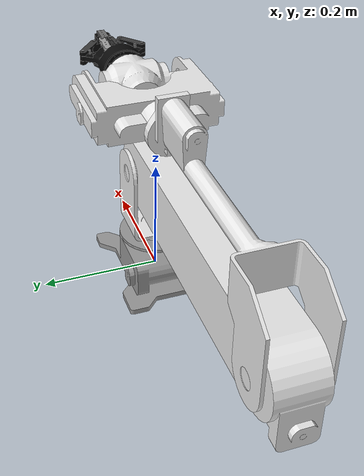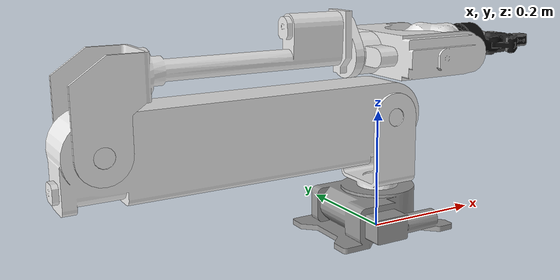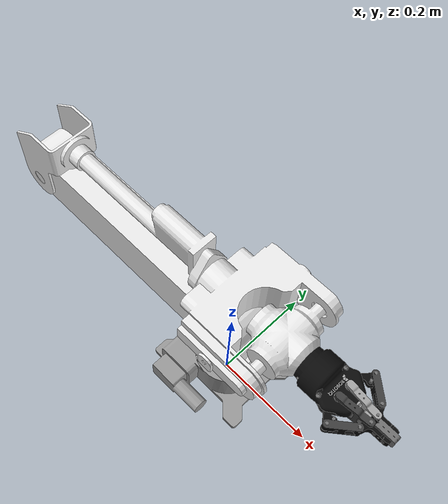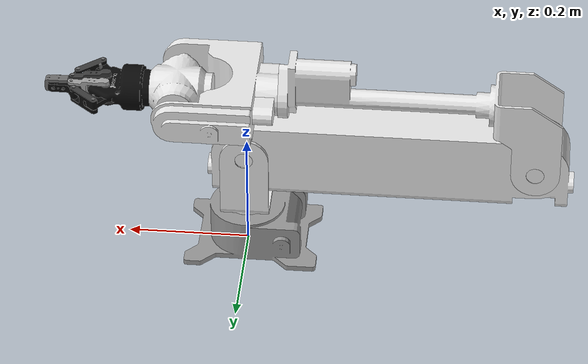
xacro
<?xml version="1.0" encoding="utf-8"?>
<robot xmlns:xacro="http://www.ros.org/wiki/xacro" name="polar">
  <xacro:arg name="robot_name" default="polar"/>

  <xacro:include filename="$(find polar_description)/robots/polar_arm.xacro"/>
  <xacro:include filename="$(find polar_description)/robots/hand.xacro"/>
  <xacro:include filename="$(find polar_description)/robots/polar.gazebo.xacro"/>
  <xacro:include filename="$(find polar_description)/robots/polar.transmission.xacro"/>

  <link name="world" />
  <xacro:polar_arm xyz="0 0 0" rpy="0 0 0" connected_to="world"/>
   <!-- Gripper description will be implemented -->

  <xacro:polar_gazebo robot_name="$(arg robot_name)" />
  <xacro:polar_transmission robot_name="$(arg robot_name)" />
</robot>

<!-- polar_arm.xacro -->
<robot xmlns:xacro="http://www.ros.org/wiki/xacro" name="polar">
  <!-- safety_distance: Minimum safety distance in [m] by which the collision volumes are expanded and which is enforced during robot motions -->
  <!-- arm_id: Namespace of the polar arm. Serves to differentiate between arms in case of multiple instances. -->
  <xacro:macro name="polar_arm" params="arm_id:='polar' description_pkg:='polar_description' connected_to:='' xyz:='0 0 0' rpy:='0 0 0'">
    <xacro:unless value="${not connected_to}">
      <joint name="virtual_joint" type="fixed">
        <parent link="${connected_to}"/> <!-- world -->
        <child link="${arm_id}_link0"/> <!-- base link -->
        <origin rpy="${rpy}" xyz="${xyz}"/>
      </joint>
    </xacro:unless>

    <xacro:property name="joint_damping" value="0.0"/>
    <xacro:property name="joint_friction" value="0.0"/>
    <xacro:property name="safety_k_position" value="100.0"/>
    <xacro:property name="safety_k_velocity" value="40.0"/>
    <xacro:property name="safety_pos_margin" value="0.0"/>

    <link name="${arm_id}_link0">
      <visual>
        <origin rpy="0 0 0" xyz="0 0 0"/>
        <geometry>
          <mesh filename="package://${description_pkg}/meshes/link0.dae"/>
        </geometry>
      </visual>
      <collision>
        <origin rpy="0 0 0" xyz="0 0 0"/>
        <geometry>
          <mesh filename="package://${description_pkg}/meshes/link0.dae"/>
        </geometry>
      </collision>
      <inertial>
        <origin rpy="0 0 0" xyz="-0.02 -0.013 0.035"/>
        <mass value="1.0"/>
        <inertia ixx="0.032" ixy="-0.003" ixz="0.0" iyy="0.029" iyz="0.001" izz="0.05"/>
      </inertial>
    </link>

    <link name="${arm_id}_link1">
      <visual>
        <origin rpy="0 0 0" xyz="-0.0 -0.0 -0.074"/>
        <geometry>
          <mesh filename="package://${description_pkg}/meshes/link1.dae"/>
        </geometry>
      </visual>
      <collision>
        <origin rpy="0 0 0" xyz="-0.0 -0.0 -0.074"/>
        <geometry>
          <mesh filename="package://${description_pkg}/meshes/link1.dae"/>
        </geometry>
      </collision>
      <inertial>
        <origin rpy="0 0 0" xyz="0.0 0.0 0.129"/>
        <mass value="1.0"/>
        <inertia ixx="0.006" ixy="0.0" ixz="0.0" iyy="0.005" iyz="0.0" izz="0.003"/>
      </inertial>
    </link>
    <joint name="${arm_id}_joint1" type="revolute">
      <safety_controller k_position="${safety_k_position}" k_velocity="${safety_k_velocity}" soft_lower_limit="${-pi + safety_pos_margin}" soft_upper_limit="${pi - safety_pos_margin}"/>
      <origin rpy="0 0 0" xyz="0.0 0.0 0.074"/>
      <parent link="${arm_id}_link0"/>
      <child link="${arm_id}_link1"/>
      <axis xyz="0.0 0.0 1.0"/>
      <limit effort="100" lower="${-pi}" upper="${pi}" velocity="0.1745"/> <!-- 10deg/s -->
      <dynamics damping="${joint_damping}" friction="${joint_friction}"/>
    </joint>

    <link name="${arm_id}_link2">
      <visual>
        <origin rpy="0 0 0" xyz="0.0 -0.0445 -0.199"/>
        <geometry>
          <mesh filename="package://${description_pkg}/meshes/link2.dae"/>
        </geometry>
      </visual>
      <collision>
        <origin rpy="0 0 0" xyz="0.0 -0.0445 -0.199"/>
        <geometry>
          <mesh filename="package://${description_pkg}/meshes/link2.dae"/>
        </geometry>
      </collision>
      <inertial>
        <origin rpy="0 0 0" xyz="-0.238 0.0 0.19"/>
        <mass value="1.0"/>
        <inertia ixx="0.082" ixy="0.0" ixz="0.0" iyy="1.288" iyz="0.0" izz="1.249"/>
      </inertial>
    </link>
    <joint name="${arm_id}_joint2" type="revolute">
      <safety_controller k_position="${safety_k_position}" k_velocity="${safety_k_velocity}" soft_lower_limit="${-pi + safety_pos_margin}" soft_upper_limit="${pi - safety_pos_margin}"/>
      <origin rpy="0 0 0" xyz="-0.0 0.0445 0.125"/>
      <parent link="${arm_id}_link1"/>
      <child link="${arm_id}_link2"/>
      <axis xyz="-0.0 1.0 -0.0"/>
      <limit effort="100" lower="${-pi}" upper="${pi}" velocity="0.1745"/> <!-- 10deg/s -->
      <dynamics damping="${joint_damping}" friction="${joint_friction}"/>
    </joint>

    <link name="${arm_id}_link3">
      <visual>
        <origin rpy="0 0 0" xyz="0.475211 -0.0445 -0.199"/>
        <geometry>
          <mesh filename="package://${description_pkg}/meshes/link3.dae"/>
        </geometry>
      </visual>
      <collision>
        <origin rpy="0 0 0" xyz="0.475211 -0.0445 -0.199"/>
        <geometry>
          <mesh filename="package://${description_pkg}/meshes/link3.dae"/>
        </geometry>
      </collision>
      <inertial>
        <origin rpy="0 0 0" xyz="0.232 0.0 0.304"/>
        <mass value="1.0"/>
        <inertia ixx="0.011" ixy="0.0" ixz="-0.02" iyy="0.154" iyz="0.0" izz="0.149"/>
      </inertial>
    </link>
    <joint name="${arm_id}_joint3" type="revolute">
      <safety_controller k_position="${safety_k_position}" k_velocity="${safety_k_velocity}" soft_lower_limit="${-pi + safety_pos_margin}" soft_upper_limit="${pi - safety_pos_margin}"/>
      <origin rpy="0 0 0" xyz="-0.475211 0.0 0.0"/>
      <parent link="${arm_id}_link2"/>
      <child link="${arm_id}_link3"/>
      <axis xyz="-0.0 -1.0 0.0"/>
      <limit effort="100" lower="${-pi}" upper="${pi}" velocity="0.1745"/> <!-- 10deg/s -->
      <dynamics damping="${joint_damping}" friction="${joint_friction}"/>
    </joint>

    <link name="${arm_id}_link4">
      <visual>
        <origin rpy="0 0 0" xyz="0.017457 -0.0 -0.300319"/>
        <geometry>
          <mesh filename="package://${description_pkg}/meshes/link4.dae"/>
        </geometry>
      </visual>
      <collision>
        <origin rpy="0 0 0" xyz="0.017457 -0.0 -0.300319"/>
        <geometry>
          <mesh filename="package://${description_pkg}/meshes/link4.dae"/>
        </geometry>
      </collision>
      <inertial>
        <origin rpy="0 0 0" xyz="0.025 0.0 0.30"/>
        <mass value="1.0"/>
        <inertia ixx="0.019" ixy="0.0" ixz="0.0" iyy="0.008" iyz="0.0" izz="0.024"/>
      </inertial>
    </link>
    <joint name="${arm_id}_joint4" type="revolute">
      <safety_controller k_position="${safety_k_position}" k_velocity="${safety_k_velocity}" soft_lower_limit="${-pi + safety_pos_margin}" soft_upper_limit="${pi - safety_pos_margin}"/>
      <origin rpy="0 0 0" xyz="0.457754 -0.0445 0.101319"/>
      <parent link="${arm_id}_link3"/>
      <child link="${arm_id}_link4"/>
      <axis xyz="1.0 -0.0 -0.0"/>
      <limit effort="100" lower="${-pi}" upper="${pi}" velocity="0.3491"/> <!-- 20deg/s -->
      <dynamics damping="${joint_damping}" friction="${joint_friction}"/>
    </joint>

    <link name="${arm_id}_link5">
      <visual>
        <origin rpy="0 0 0" xyz="-0.110443 -0.085 -0.300319"/>
        <geometry>
          <mesh filename="package://${description_pkg}/meshes/link5.dae"/>
        </geometry>
      </visual>
      <collision>
        <origin rpy="0 0 0" xyz="-0.110443 -0.085 -0.300319"/>
        <geometry>
          <mesh filename="package://${description_pkg}/meshes/link5.dae"/>
        </geometry>
      </collision>
      <inertial>
        <origin rpy="0 0 0" xyz="0.108 0.0 0.30"/>
        <mass value="1.0"/>
        <inertia ixx="0.006" ixy="0.0" ixz="0.0" iyy="0.005" iyz="0.0" izz="0.007"/>
      </inertial>
    </link>
    <joint name="${arm_id}_joint5" type="revolute">
      <safety_controller k_position="${safety_k_position}" k_velocity="${safety_k_velocity}" soft_lower_limit="${-pi + safety_pos_margin}" soft_upper_limit="${pi - safety_pos_margin}"/>
      <origin rpy="0 0 0" xyz="0.1279 0.085 0.0"/>
      <parent link="${arm_id}_link4"/>
      <child link="${arm_id}_link5"/>
      <axis xyz="0.0 -1.0 -0.0"/>
      <limit effort="100" lower="${-pi}" upper="${pi}" velocity="0.1745"/> <!-- 10deg/s -->
      <dynamics damping="${joint_damping}" friction="${joint_friction}"/>
    </joint>

    <link name="${arm_id}_link6">
      <visual>
        <origin rpy="0 0 0" xyz="-0.155443 -0.0 -0.300319"/>
        <geometry>
          <mesh filename="package://${description_pkg}/meshes/link6.dae"/>
        </geometry>
      </visual>
      <collision>
        <origin rpy="0 0 0" xyz="-0.155443 -0.0 -0.300319"/>
        <geometry>
          <mesh filename="package://${description_pkg}/meshes/link6.dae"/>
        </geometry>
      </collision>
      <inertial>
        <origin rpy="0 0 0" xyz="0.161 0.0 0.30"/>
        <mass value="1.0"/>
        <inertia ixx="0.0" ixy="0.0" ixz="0.0" iyy="0.0" iyz="0.0" izz="0.0"/>
      </inertial>
    </link>
    <joint name="${arm_id}_joint6" type="revolute">
      <safety_controller k_position="${safety_k_position}" k_velocity="${safety_k_velocity}" soft_lower_limit="${-pi + safety_pos_margin}" soft_upper_limit="${pi - safety_pos_margin}"/>
      <origin rpy="0 0 0" xyz="0.045 -0.085 0.0"/>
      <parent link="${arm_id}_link5"/>
      <child link="${arm_id}_link6"/>
      <axis xyz="1.0 0.0 -0.0"/>
      <limit effort="100" lower="${-pi}" upper="${pi}" velocity="0.1745"/> <!-- 10deg/s -->
      <dynamics damping="${joint_damping}" friction="${joint_friction}"/>
    </joint>

  </xacro:macro>
</robot>
